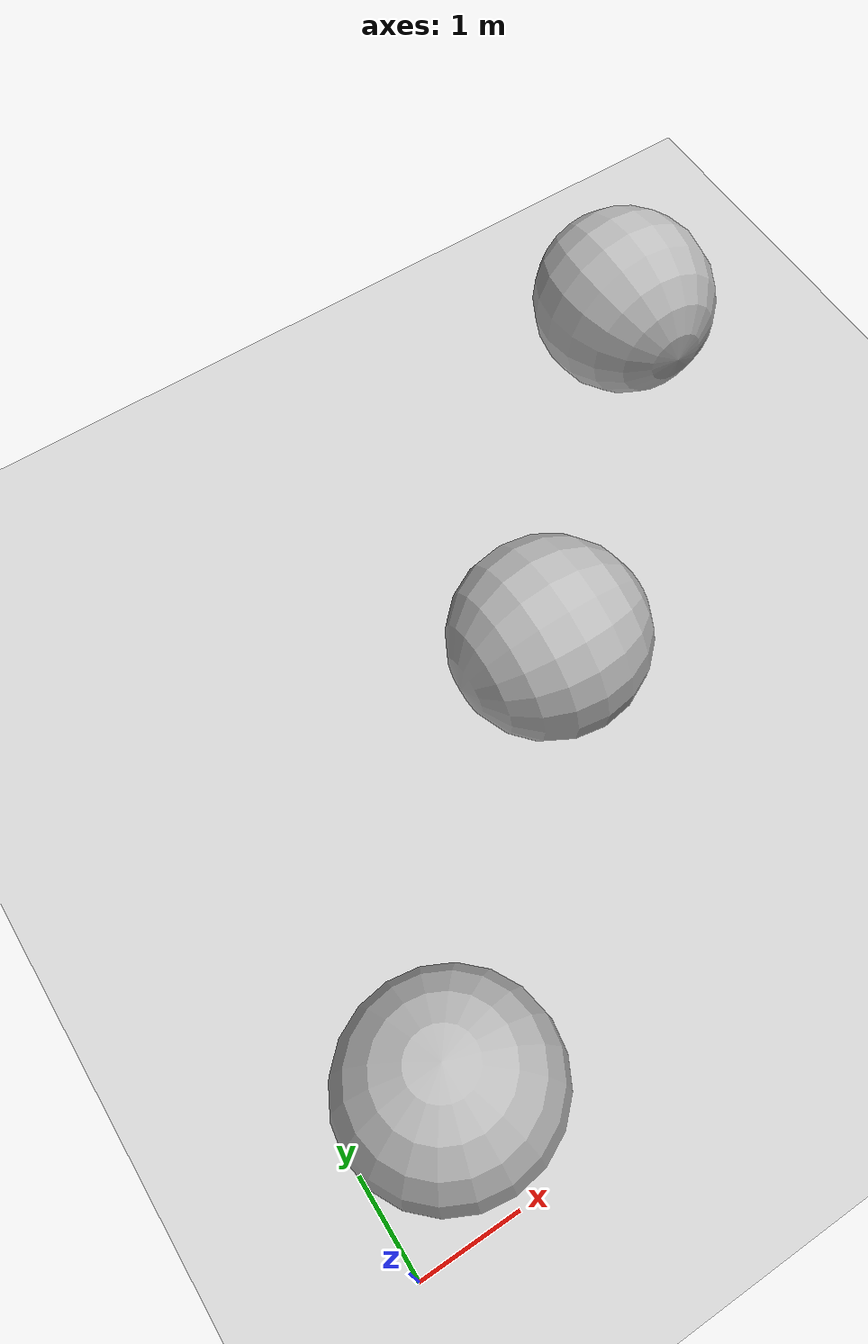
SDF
<?xml version="1.0" ?>
<sdf version="1.6">
  <world name="imu_sensor">
    <plugin
      filename="gz-sim-apply-link-wrench-system"
      name="gz::sim::systems::ApplyLinkWrench">
    </plugin>

    <gravity>0 0.1 -0.1</gravity>
    <physics name="1ms" type="ode">
      <max_step_size>0.001</max_step_size>
      <real_time_factor>0</real_time_factor>
    </physics>
    <plugin
      filename="gz-sim-physics-system"
      name="gz::sim::systems::Physics">
    </plugin>
    <plugin
      filename="gz-sim-imu-system"
      name="gz::sim::systems::Imu">
    </plugin>
    <plugin
      filename="gz-sim-scene-broadcaster-system"
      name="gz::sim::systems::SceneBroadcaster">
    </plugin>

    <model name="ground_plane">
      <static>true</static>
      <link name="link">
        <collision name="collision">
          <geometry>
            <plane>
              <normal>0 0 1</normal>
              <size>100 100</size>
            </plane>
          </geometry>
        </collision>
        <visual name="visual">
          <geometry>
            <plane>
              <normal>0 0 1</normal>
              <size>100 100</size>
            </plane>
          </geometry>
          <material>
            <ambient>0.8 0.8 0.8 1</ambient>
            <diffuse>0.8 0.8 0.8 1</diffuse>
            <specular>0.8 0.8 0.8 1</specular>
          </material>
        </visual>
      </link>
    </model>

    <model name="imu_model_1">
      <pose>1 1 1 0 1.57 0</pose>
      <link name="link">
        <pose>0 0 0 0 1.57 0</pose>
        <inertial>
          <mass>0.1</mass>
          <inertia>
            <ixx>0.000166667</ixx>
            <iyy>0.000166667</iyy>
            <izz>0.000166667</izz>
          </inertia>
        </inertial>
        <collision name="collision_1">
          <geometry>
            <sphere></sphere>
          </geometry>
        </collision>
        <visual name="visual_1">
          <geometry>
            <sphere></sphere>
          </geometry>
        </visual>
        <sensor name='imu_sensor_DEFAULT_1' type='imu'>
          <topic>imu_test_DEFAULT_1</topic>
          <update_rate>1</update_rate>
          <always_on>1</always_on>
          <visualize>true</visualize>
        </sensor>
        <sensor name='imu_sensor_ENU' type='imu'>
          <topic>imu_test_ENU</topic>
          <update_rate>1</update_rate>
          <imu>
            <orientation_reference_frame>
              <localization>ENU</localization>
            </orientation_reference_frame>
          </imu>
          <always_on>1</always_on>
          <visualize>true</visualize>
        </sensor>
        <sensor name='imu_sensor_NED' type='imu'>
          <topic>imu_test_NED</topic>
          <update_rate>1</update_rate>
          <imu>
            <orientation_reference_frame>
              <localization>NED</localization>
            </orientation_reference_frame>
          </imu>
          <always_on>1</always_on>
          <visualize>true</visualize>
        </sensor>
      </link>
    </model>

    <model name="imu_model_2">
      <pose>4 4 1 1.57 0 0</pose>
      <link name="link_2">
        <pose>0 0 0 0 1.57 0</pose>
        <inertial>
          <mass>0.1</mass>
          <inertia>
            <ixx>0.000166667</ixx>
            <iyy>0.000166667</iyy>
            <izz>0.000166667</izz>
          </inertia>
        </inertial>
        <collision name="collision_2">
          <geometry>
            <sphere></sphere>
          </geometry>
        </collision>
        <visual name="visual_2">
          <geometry>
            <sphere></sphere>
          </geometry>
        </visual>
        <sensor name='imu_sensor_DEFAULT_2' type='imu'>
          <topic>imu_test_DEFAULT_2</topic>
          <update_rate>1</update_rate>
          <always_on>1</always_on>
          <visualize>true</visualize>
        </sensor>
      </link>
    </model>

    <model name="imu_model_3">
      <pose>7 7 1 1.57 0 0</pose>
      <link name="link_3">
        <pose>0 0 0 0 0 1.57</pose>
        <inertial>
          <mass>0.1</mass>
          <inertia>
            <ixx>0.000166667</ixx>
            <iyy>0.000166667</iyy>
            <izz>0.000166667</izz>
          </inertia>
        </inertial>
        <collision name="collision_3">
          <geometry>
            <sphere></sphere>
          </geometry>
        </collision>
        <visual name="visual_3">
          <geometry>
            <sphere></sphere>
          </geometry>
        </visual>
        <sensor name='imu_sensor_DEFAULT_3' type='imu'>
          <topic>imu_test_DEFAULT_3</topic>
          <update_rate>1</update_rate>
          <always_on>1</always_on>
          <visualize>true</visualize>
        </sensor>
      </link>
    </model>

  </world>
</sdf>
